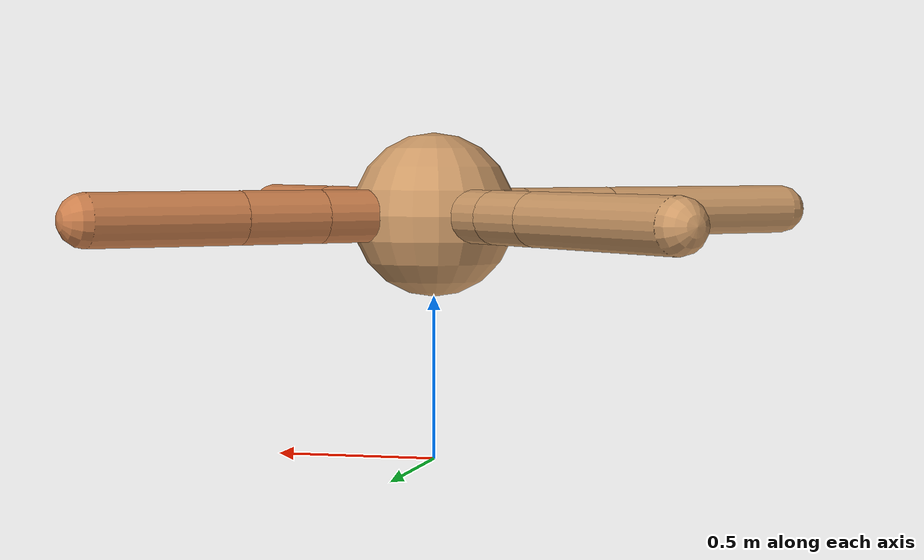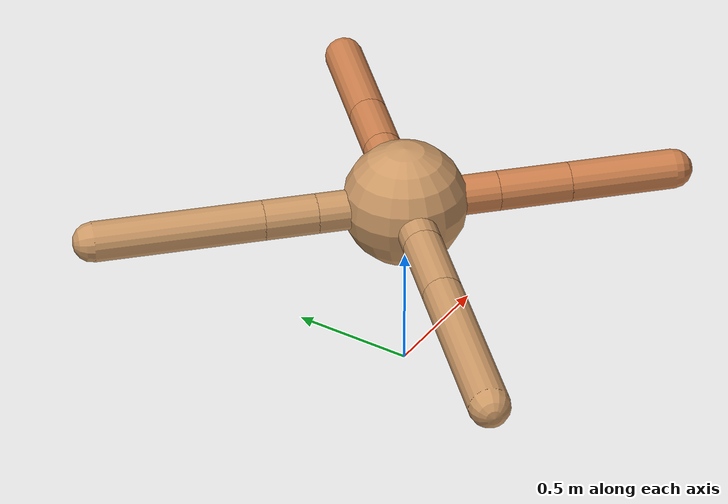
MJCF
<mujoco model="ant">
  <compiler angle="degree" coordinate="local" inertiafromgeom="true" />
  <option integrator="RK4" timestep="0.01" />
  <custom>
    <numeric data="0.0 0.0 0.55 1.0 0.0 0.0 0.0 0.0 1.0 0.0 -1.0 0.0 -1.0 0.0 1.0" name="init_qpos" />
  </custom>
  <default>
    <joint armature="1" damping="1" limited="true" />
    <geom conaffinity="0" condim="3" density="5.0" friction="1.5 0.1 0.1" margin="0.01" rgba="0.8 0.6 0.4 1" />
  </default>
  <worldbody>
    <body name="torso" pos="0 0 0.75">
      <geom name="torso_geom" pos="0 0 0" size="0.25" type="sphere" />

      <body name="front_left_leg" pos="0 0 0">
        <geom fromto="0.0 0.0 0.0 0.2768500887916691 0.2768500887916691 0.0" name="aux_1_geom" size="0.08" type="capsule" rgba=".8 .5 .3 1" />
        <body name="aux_1" pos="0.2768500887916691 0.2768500887916691 0.0">
          <joint axis="0 0 1" name="hip_1" pos="0.0 0.0 0.0" range="-40 40" type="hinge" />
          <geom fromto="0.0 0.0 0.0 0.18438980730157684 0.18438980730157684 0.0" name="left_leg_geom" size="0.08" type="capsule" rgba=".8 .5 .3 1" />
          <body pos="0.18438980730157684 0.18438980730157684 0.0" name="front_left_foot">
            <joint axis="-1 1 0" name="ankle_1" pos="0.0 0.0 0.0" range="30 100" type="hinge" />
            <geom fromto="0.0 0.0 0.0 0.3357414186242027 0.3357414186242027 0.0" name="left_ankle_geom" size="0.08" type="capsule" rgba=".8 .5 .3 1" />
          </body>
        </body>
      </body>
      <body name="front_right_leg" pos="0 0 0">
        <geom fromto="0.0 0.0 0.0 -0.2513786362568907 0.2513786362568907 0.0" name="aux_2_geom" size="0.08" type="capsule" />
        <body name="aux_2" pos="-0.2513786362568907 0.2513786362568907 0.0">
          <joint axis="0 0 1" name="hip_2" pos="0.0 0.0 0.0" range="-40 40" type="hinge" />
          <geom fromto="0.0 0.0 0.0 -0.1502790256394584 0.1502790256394584 0.0" name="right_leg_geom" size="0.08" type="capsule" />
          <body pos="-0.1502790256394584 0.1502790256394584 0.0" name="front_right_foot">
            <joint axis="1 1 0" name="ankle_2" pos="0.0 0.0 0.0" range="-100 -30" type="hinge" />
            <geom fromto="0.0 0.0 0.0 -0.4738987515578651 0.4738987515578651 0.0" name="right_ankle_geom" size="0.08" type="capsule" />
          </body>
        </body>
      </body>
      <body name="left_back_leg" pos="0 0 0">
        <geom fromto="0.0 0.0 0.0 -0.22446994739074838 -0.22446994739074838 0.0" name="aux_3_geom" size="0.08" type="capsule" />
        <body name="aux_3" pos="-0.22446994739074838 -0.22446994739074838 0.0">
          <joint axis="0 0 1" name="hip_3" pos="0.0 0.0 0.0" range="-40 40" type="hinge" />
          <geom fromto="0.0 0.0 0.0 -0.22919495433960818 -0.22919495433960818 0.0" name="back_leg_geom" size="0.08" type="capsule" />
          <body pos="-0.22919495433960818 -0.22919495433960818 0.0" name="left_back_foot">
            <joint axis="-1 1 0" name="ankle_3" pos="0.0 0.0 0.0" range="-100 -30" type="hinge" />
            <geom fromto="0.0 0.0 0.0 -0.5049811424492706 -0.5049811424492706 0.0" name="third_ankle_geom" size="0.08" type="capsule" />
          </body>
        </body>
      </body>
      <body name="right_back_leg" pos="0 0 0">
        <geom fromto="0.0 0.0 0.0 0.2637449424384472 -0.2637449424384472 0.0" name="aux_4_geom" size="0.08" type="capsule" rgba=".8 .5 .3 1" />
        <body name="aux_4" pos="0.2637449424384472 -0.2637449424384472 0.0">
          <joint axis="0 0 1" name="hip_4" pos="0.0 0.0 0.0" range="-40 40" type="hinge" />
          <geom fromto="0.0 0.0 0.0 0.206082109818905 -0.206082109818905 0.0" name="rightback_leg_geom" size="0.08" type="capsule" rgba=".8 .5 .3 1" />
          <body pos="0.206082109818905 -0.206082109818905 0.0" name="right_back_foot">
            <joint axis="1 1 0" name="ankle_4" pos="0.0 0.0 0.0" range="30 100" type="hinge" />
            <geom fromto="0.0 0.0 0.0 0.3040366140781857 -0.3040366140781857 0.0" name="fourth_ankle_geom" size="0.08" type="capsule" rgba=".8 .5 .3 1" />
          </body>
        </body>
      </body>
    </body>
  </worldbody>
  <actuator>
    <motor ctrllimited="true" ctrlrange="-1.0 1.0" joint="hip_4" gear="150" />
    <motor ctrllimited="true" ctrlrange="-1.0 1.0" joint="ankle_4" gear="150" />
    <motor ctrllimited="true" ctrlrange="-1.0 1.0" joint="hip_1" gear="150" />
    <motor ctrllimited="true" ctrlrange="-1.0 1.0" joint="ankle_1" gear="150" />
    <motor ctrllimited="true" ctrlrange="-1.0 1.0" joint="hip_2" gear="150" />
    <motor ctrllimited="true" ctrlrange="-1.0 1.0" joint="ankle_2" gear="150" />
    <motor ctrllimited="true" ctrlrange="-1.0 1.0" joint="hip_3" gear="150" />
    <motor ctrllimited="true" ctrlrange="-1.0 1.0" joint="ankle_3" gear="150" />
  </actuator>
</mujoco>
